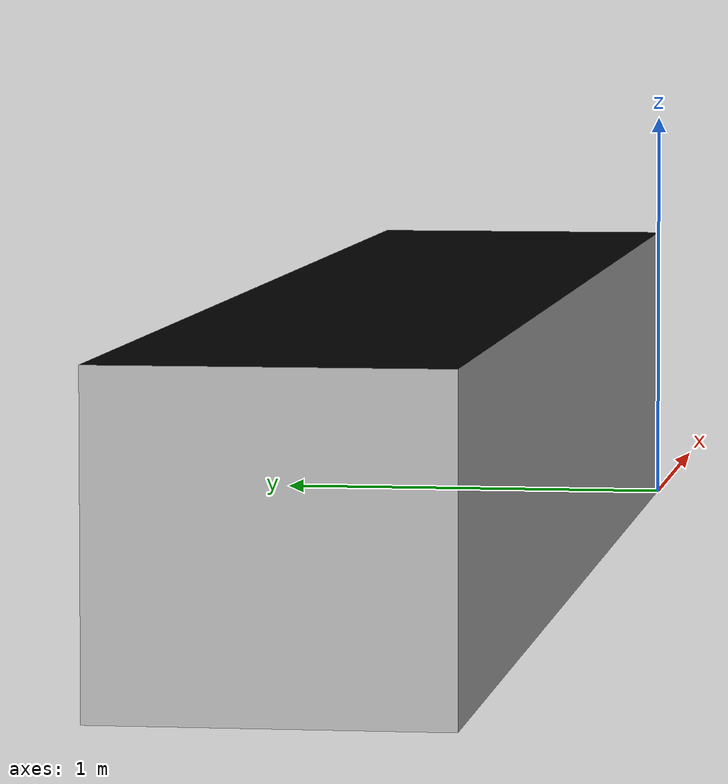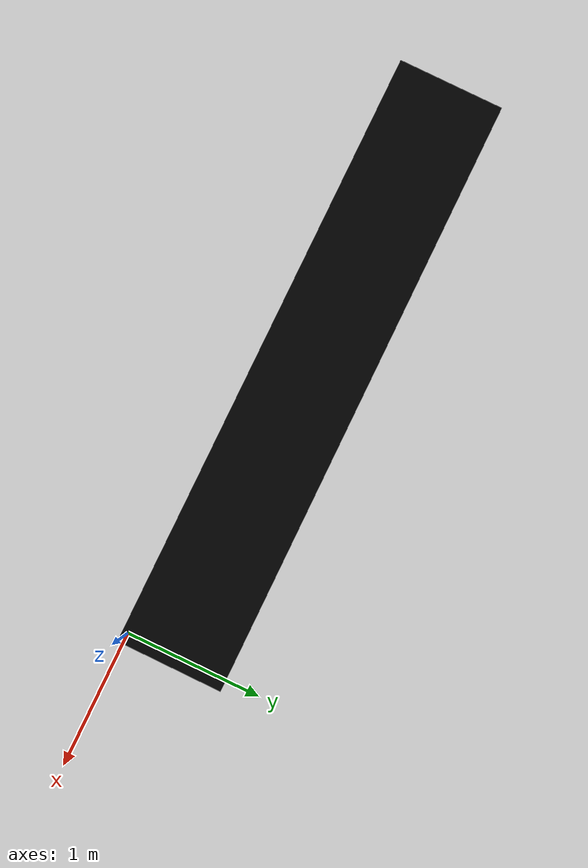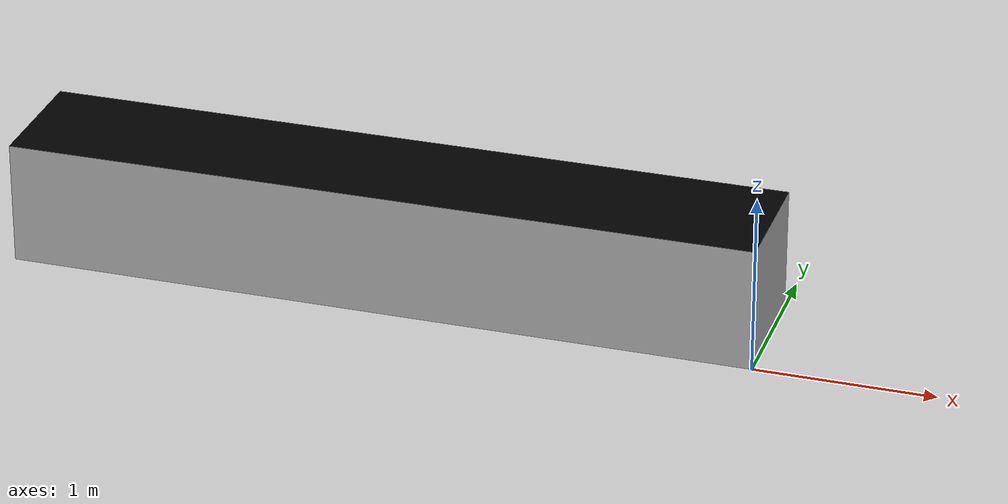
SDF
<?xml version="1.0" ?>
<sdf version="1.5">

  <model name="reception_desk">
    <static>true</static>
    <pose>0 0 0 0 0 0</pose>
    <link name="base">
      <collision name="collision">
        <pose>0 0 0 0 0 0</pose>
        <geometry>
          <mesh>
            <uri>model://desk/meshes/model.dae</uri>
          </mesh>
        </geometry>
      </collision>
      <visual name="visual">
        <geometry>
          <mesh>
            <uri>model://desk/meshes/model.dae</uri>
          </mesh>
        </geometry>
        <cast_shadows>false</cast_shadows>
      </visual>
    </link>

  </model>

</sdf>
